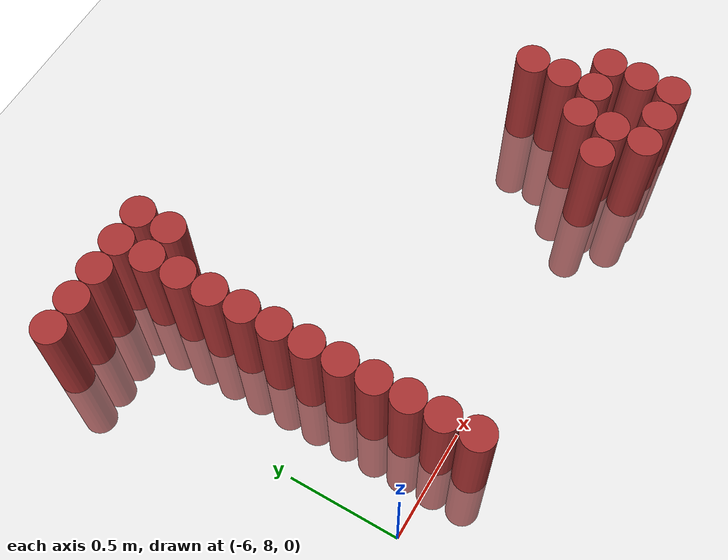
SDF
<sdf version="1.6">
 <world name="default">
  <model name="ground_plane">
   <static>1</static>
   <link name="link">
    <collision name="collision">
     <geometry><plane><normal>0 0 1</normal><size>100 100</size></plane></geometry>
     <surface><friction><ode><mu>100</mu><mu2>50</mu2></ode></friction></surface>
    </collision>
    <visual name="visual">
     <cast_shadows>0</cast_shadows>
     <geometry><plane><normal>0 0 1</normal><size>100 100</size></plane></geometry>
     <material>
      <script><uri>file://media/materials/scripts/gazebo.material</uri><name>Gazebo/Grey</name></script>
     </material>
    </visual>
   </link>
  </model>
  <model name="unit_cylinder_204">
   <static>1</static>
   <pose>-6.075000 9.525000 0.000000 0.000000 0.000000 0.000000</pose>
   <link name="link">
    <inertial>
     <mass>1</mass>
     <inertia><ixx>0.145833</ixx><ixy>0</ixy><ixz>0</ixz><iyy>0.145833</iyy><iyz>0</iyz><izz>0.125</izz></inertia>
    </inertial>
    <collision name="collision">
     <geometry><cylinder><radius>0.075000</radius><length>1</length></cylinder></geometry>
    </collision>
    <visual name="visual">
     <geometry><cylinder><radius>0.075000</radius><length>1</length></cylinder></geometry>
     <material>
      <ambient>0.648000 0.192000 0.192000 1</ambient>
      <diffuse>0.648000 0.192000 0.192000 1</diffuse>
     </material>
     <material>
      <script><name>Gazebo/Grey</name><uri>file://media/materials/scripts/gazebo.material</uri></script>
     </material>
    </visual>
   </link>
  </model>
  <model name="unit_cylinder_206">
   <static>1</static>
   <pose>-5.925000 9.525000 0.000000 0.000000 0.000000 0.000000</pose>
   <link name="link">
    <inertial>
     <mass>1</mass>
     <inertia><ixx>0.145833</ixx><ixy>0</ixy><ixz>0</ixz><iyy>0.145833</iyy><iyz>0</iyz><izz>0.125</izz></inertia>
    </inertial>
    <collision name="collision">
     <geometry><cylinder><radius>0.075000</radius><length>1</length></cylinder></geometry>
    </collision>
    <visual name="visual">
     <geometry><cylinder><radius>0.075000</radius><length>1</length></cylinder></geometry>
     <material>
      <ambient>0.648000 0.192000 0.192000 1</ambient>
      <diffuse>0.648000 0.192000 0.192000 1</diffuse>
     </material>
     <material>
      <script><name>Gazebo/Grey</name><uri>file://media/materials/scripts/gazebo.material</uri></script>
     </material>
    </visual>
   </link>
  </model>
  <model name="unit_cylinder_208">
   <static>1</static>
   <pose>-5.775000 9.525000 0.000000 0.000000 0.000000 0.000000</pose>
   <link name="link">
    <inertial>
     <mass>1</mass>
     <inertia><ixx>0.145833</ixx><ixy>0</ixy><ixz>0</ixz><iyy>0.145833</iyy><iyz>0</iyz><izz>0.125</izz></inertia>
    </inertial>
    <collision name="collision">
     <geometry><cylinder><radius>0.075000</radius><length>1</length></cylinder></geometry>
    </collision>
    <visual name="visual">
     <geometry><cylinder><radius>0.075000</radius><length>1</length></cylinder></geometry>
     <material>
      <ambient>0.648000 0.192000 0.192000 1</ambient>
      <diffuse>0.648000 0.192000 0.192000 1</diffuse>
     </material>
     <material>
      <script><name>Gazebo/Grey</name><uri>file://media/materials/scripts/gazebo.material</uri></script>
     </material>
    </visual>
   </link>
  </model>
  <model name="unit_cylinder_215">
   <static>1</static>
   <pose>-5.625000 7.875000 0.000000 0.000000 0.000000 0.000000</pose>
   <link name="link">
    <inertial>
     <mass>1</mass>
     <inertia><ixx>0.145833</ixx><ixy>0</ixy><ixz>0</ixz><iyy>0.145833</iyy><iyz>0</iyz><izz>0.125</izz></inertia>
    </inertial>
    <collision name="collision">
     <geometry><cylinder><radius>0.075000</radius><length>1</length></cylinder></geometry>
    </collision>
    <visual name="visual">
     <geometry><cylinder><radius>0.075000</radius><length>1</length></cylinder></geometry>
     <material>
      <ambient>0.648000 0.192000 0.192000 1</ambient>
      <diffuse>0.648000 0.192000 0.192000 1</diffuse>
     </material>
     <material>
      <script><name>Gazebo/Grey</name><uri>file://media/materials/scripts/gazebo.material</uri></script>
     </material>
    </visual>
   </link>
  </model>
  <model name="unit_cylinder_216">
   <static>1</static>
   <pose>-5.625000 8.025000 0.000000 0.000000 0.000000 0.000000</pose>
   <link name="link">
    <inertial>
     <mass>1</mass>
     <inertia><ixx>0.145833</ixx><ixy>0</ixy><ixz>0</ixz><iyy>0.145833</iyy><iyz>0</iyz><izz>0.125</izz></inertia>
    </inertial>
    <collision name="collision">
     <geometry><cylinder><radius>0.075000</radius><length>1</length></cylinder></geometry>
    </collision>
    <visual name="visual">
     <geometry><cylinder><radius>0.075000</radius><length>1</length></cylinder></geometry>
     <material>
      <ambient>0.648000 0.192000 0.192000 1</ambient>
      <diffuse>0.648000 0.192000 0.192000 1</diffuse>
     </material>
     <material>
      <script><name>Gazebo/Grey</name><uri>file://media/materials/scripts/gazebo.material</uri></script>
     </material>
    </visual>
   </link>
  </model>
  <model name="unit_cylinder_217">
   <static>1</static>
   <pose>-5.625000 8.175000 0.000000 0.000000 0.000000 0.000000</pose>
   <link name="link">
    <inertial>
     <mass>1</mass>
     <inertia><ixx>0.145833</ixx><ixy>0</ixy><ixz>0</ixz><iyy>0.145833</iyy><iyz>0</iyz><izz>0.125</izz></inertia>
    </inertial>
    <collision name="collision">
     <geometry><cylinder><radius>0.075000</radius><length>1</length></cylinder></geometry>
    </collision>
    <visual name="visual">
     <geometry><cylinder><radius>0.075000</radius><length>1</length></cylinder></geometry>
     <material>
      <ambient>0.648000 0.192000 0.192000 1</ambient>
      <diffuse>0.648000 0.192000 0.192000 1</diffuse>
     </material>
     <material>
      <script><name>Gazebo/Grey</name><uri>file://media/materials/scripts/gazebo.material</uri></script>
     </material>
    </visual>
   </link>
  </model>
  <model name="unit_cylinder_218">
   <static>1</static>
   <pose>-5.625000 8.325000 0.000000 0.000000 0.000000 0.000000</pose>
   <link name="link">
    <inertial>
     <mass>1</mass>
     <inertia><ixx>0.145833</ixx><ixy>0</ixy><ixz>0</ixz><iyy>0.145833</iyy><iyz>0</iyz><izz>0.125</izz></inertia>
    </inertial>
    <collision name="collision">
     <geometry><cylinder><radius>0.075000</radius><length>1</length></cylinder></geometry>
    </collision>
    <visual name="visual">
     <geometry><cylinder><radius>0.075000</radius><length>1</length></cylinder></geometry>
     <material>
      <ambient>0.648000 0.192000 0.192000 1</ambient>
      <diffuse>0.648000 0.192000 0.192000 1</diffuse>
     </material>
     <material>
      <script><name>Gazebo/Grey</name><uri>file://media/materials/scripts/gazebo.material</uri></script>
     </material>
    </visual>
   </link>
  </model>
  <model name="unit_cylinder_219">
   <static>1</static>
   <pose>-5.625000 8.475000 0.000000 0.000000 0.000000 0.000000</pose>
   <link name="link">
    <inertial>
     <mass>1</mass>
     <inertia><ixx>0.145833</ixx><ixy>0</ixy><ixz>0</ixz><iyy>0.145833</iyy><iyz>0</iyz><izz>0.125</izz></inertia>
    </inertial>
    <collision name="collision">
     <geometry><cylinder><radius>0.075000</radius><length>1</length></cylinder></geometry>
    </collision>
    <visual name="visual">
     <geometry><cylinder><radius>0.075000</radius><length>1</length></cylinder></geometry>
     <material>
      <ambient>0.648000 0.192000 0.192000 1</ambient>
      <diffuse>0.648000 0.192000 0.192000 1</diffuse>
     </material>
     <material>
      <script><name>Gazebo/Grey</name><uri>file://media/materials/scripts/gazebo.material</uri></script>
     </material>
    </visual>
   </link>
  </model>
  <model name="unit_cylinder_220">
   <static>1</static>
   <pose>-5.625000 8.625000 0.000000 0.000000 0.000000 0.000000</pose>
   <link name="link">
    <inertial>
     <mass>1</mass>
     <inertia><ixx>0.145833</ixx><ixy>0</ixy><ixz>0</ixz><iyy>0.145833</iyy><iyz>0</iyz><izz>0.125</izz></inertia>
    </inertial>
    <collision name="collision">
     <geometry><cylinder><radius>0.075000</radius><length>1</length></cylinder></geometry>
    </collision>
    <visual name="visual">
     <geometry><cylinder><radius>0.075000</radius><length>1</length></cylinder></geometry>
     <material>
      <ambient>0.648000 0.192000 0.192000 1</ambient>
      <diffuse>0.648000 0.192000 0.192000 1</diffuse>
     </material>
     <material>
      <script><name>Gazebo/Grey</name><uri>file://media/materials/scripts/gazebo.material</uri></script>
     </material>
    </visual>
   </link>
  </model>
  <model name="unit_cylinder_221">
   <static>1</static>
   <pose>-5.625000 8.775000 0.000000 0.000000 0.000000 0.000000</pose>
   <link name="link">
    <inertial>
     <mass>1</mass>
     <inertia><ixx>0.145833</ixx><ixy>0</ixy><ixz>0</ixz><iyy>0.145833</iyy><iyz>0</iyz><izz>0.125</izz></inertia>
    </inertial>
    <collision name="collision">
     <geometry><cylinder><radius>0.075000</radius><length>1</length></cylinder></geometry>
    </collision>
    <visual name="visual">
     <geometry><cylinder><radius>0.075000</radius><length>1</length></cylinder></geometry>
     <material>
      <ambient>0.648000 0.192000 0.192000 1</ambient>
      <diffuse>0.648000 0.192000 0.192000 1</diffuse>
     </material>
     <material>
      <script><name>Gazebo/Grey</name><uri>file://media/materials/scripts/gazebo.material</uri></script>
     </material>
    </visual>
   </link>
  </model>
  <model name="unit_cylinder_222">
   <static>1</static>
   <pose>-5.625000 8.925000 0.000000 0.000000 0.000000 0.000000</pose>
   <link name="link">
    <inertial>
     <mass>1</mass>
     <inertia><ixx>0.145833</ixx><ixy>0</ixy><ixz>0</ixz><iyy>0.145833</iyy><iyz>0</iyz><izz>0.125</izz></inertia>
    </inertial>
    <collision name="collision">
     <geometry><cylinder><radius>0.075000</radius><length>1</length></cylinder></geometry>
    </collision>
    <visual name="visual">
     <geometry><cylinder><radius>0.075000</radius><length>1</length></cylinder></geometry>
     <material>
      <ambient>0.648000 0.192000 0.192000 1</ambient>
      <diffuse>0.648000 0.192000 0.192000 1</diffuse>
     </material>
     <material>
      <script><name>Gazebo/Grey</name><uri>file://media/materials/scripts/gazebo.material</uri></script>
     </material>
    </visual>
   </link>
  </model>
  <model name="unit_cylinder_223">
   <static>1</static>
   <pose>-5.625000 9.075000 0.000000 0.000000 0.000000 0.000000</pose>
   <link name="link">
    <inertial>
     <mass>1</mass>
     <inertia><ixx>0.145833</ixx><ixy>0</ixy><ixz>0</ixz><iyy>0.145833</iyy><iyz>0</iyz><izz>0.125</izz></inertia>
    </inertial>
    <collision name="collision">
     <geometry><cylinder><radius>0.075000</radius><length>1</length></cylinder></geometry>
    </collision>
    <visual name="visual">
     <geometry><cylinder><radius>0.075000</radius><length>1</length></cylinder></geometry>
     <material>
      <ambient>0.648000 0.192000 0.192000 1</ambient>
      <diffuse>0.648000 0.192000 0.192000 1</diffuse>
     </material>
     <material>
      <script><name>Gazebo/Grey</name><uri>file://media/materials/scripts/gazebo.material</uri></script>
     </material>
    </visual>
   </link>
  </model>
  <model name="unit_cylinder_224">
   <static>1</static>
   <pose>-5.625000 9.225000 0.000000 0.000000 0.000000 0.000000</pose>
   <link name="link">
    <inertial>
     <mass>1</mass>
     <inertia><ixx>0.145833</ixx><ixy>0</ixy><ixz>0</ixz><iyy>0.145833</iyy><iyz>0</iyz><izz>0.125</izz></inertia>
    </inertial>
    <collision name="collision">
     <geometry><cylinder><radius>0.075000</radius><length>1</length></cylinder></geometry>
    </collision>
    <visual name="visual">
     <geometry><cylinder><radius>0.075000</radius><length>1</length></cylinder></geometry>
     <material>
      <ambient>0.648000 0.192000 0.192000 1</ambient>
      <diffuse>0.648000 0.192000 0.192000 1</diffuse>
     </material>
     <material>
      <script><name>Gazebo/Grey</name><uri>file://media/materials/scripts/gazebo.material</uri></script>
     </material>
    </visual>
   </link>
  </model>
  <model name="unit_cylinder_225">
   <static>1</static>
   <pose>-5.625000 9.375000 0.000000 0.000000 0.000000 0.000000</pose>
   <link name="link">
    <inertial>
     <mass>1</mass>
     <inertia><ixx>0.145833</ixx><ixy>0</ixy><ixz>0</ixz><iyy>0.145833</iyy><iyz>0</iyz><izz>0.125</izz></inertia>
    </inertial>
    <collision name="collision">
     <geometry><cylinder><radius>0.075000</radius><length>1</length></cylinder></geometry>
    </collision>
    <visual name="visual">
     <geometry><cylinder><radius>0.075000</radius><length>1</length></cylinder></geometry>
     <material>
      <ambient>0.648000 0.192000 0.192000 1</ambient>
      <diffuse>0.648000 0.192000 0.192000 1</diffuse>
     </material>
     <material>
      <script><name>Gazebo/Grey</name><uri>file://media/materials/scripts/gazebo.material</uri></script>
     </material>
    </visual>
   </link>
  </model>
  <model name="unit_cylinder_226">
   <static>1</static>
   <pose>-5.625000 9.525000 0.000000 0.000000 0.000000 0.000000</pose>
   <link name="link">
    <inertial>
     <mass>1</mass>
     <inertia><ixx>0.145833</ixx><ixy>0</ixy><ixz>0</ixz><iyy>0.145833</iyy><iyz>0</iyz><izz>0.125</izz></inertia>
    </inertial>
    <collision name="collision">
     <geometry><cylinder><radius>0.075000</radius><length>1</length></cylinder></geometry>
    </collision>
    <visual name="visual">
     <geometry><cylinder><radius>0.075000</radius><length>1</length></cylinder></geometry>
     <material>
      <ambient>0.648000 0.192000 0.192000 1</ambient>
      <diffuse>0.648000 0.192000 0.192000 1</diffuse>
     </material>
     <material>
      <script><name>Gazebo/Grey</name><uri>file://media/materials/scripts/gazebo.material</uri></script>
     </material>
    </visual>
   </link>
  </model>
  <model name="unit_cylinder_227">
   <static>1</static>
   <pose>-5.475000 9.375000 0.000000 0.000000 0.000000 0.000000</pose>
   <link name="link">
    <inertial>
     <mass>1</mass>
     <inertia><ixx>0.145833</ixx><ixy>0</ixy><ixz>0</ixz><iyy>0.145833</iyy><iyz>0</iyz><izz>0.125</izz></inertia>
    </inertial>
    <collision name="collision">
     <geometry><cylinder><radius>0.075000</radius><length>1</length></cylinder></geometry>
    </collision>
    <visual name="visual">
     <geometry><cylinder><radius>0.075000</radius><length>1</length></cylinder></geometry>
     <material>
      <ambient>0.648000 0.192000 0.192000 1</ambient>
      <diffuse>0.648000 0.192000 0.192000 1</diffuse>
     </material>
     <material>
      <script><name>Gazebo/Grey</name><uri>file://media/materials/scripts/gazebo.material</uri></script>
     </material>
    </visual>
   </link>
  </model>
  <model name="unit_cylinder_228">
   <static>1</static>
   <pose>-5.475000 9.525000 0.000000 0.000000 0.000000 0.000000</pose>
   <link name="link">
    <inertial>
     <mass>1</mass>
     <inertia><ixx>0.145833</ixx><ixy>0</ixy><ixz>0</ixz><iyy>0.145833</iyy><iyz>0</iyz><izz>0.125</izz></inertia>
    </inertial>
    <collision name="collision">
     <geometry><cylinder><radius>0.075000</radius><length>1</length></cylinder></geometry>
    </collision>
    <visual name="visual">
     <geometry><cylinder><radius>0.075000</radius><length>1</length></cylinder></geometry>
     <material>
      <ambient>0.648000 0.192000 0.192000 1</ambient>
      <diffuse>0.648000 0.192000 0.192000 1</diffuse>
     </material>
     <material>
      <script><name>Gazebo/Grey</name><uri>file://media/materials/scripts/gazebo.material</uri></script>
     </material>
    </visual>
   </link>
  </model>
  <model name="unit_cylinder_233">
   <static>1</static>
   <pose>-4.275000 8.025000 0.000000 0.000000 0.000000 0.000000</pose>
   <link name="link">
    <inertial>
     <mass>1</mass>
     <inertia><ixx>0.145833</ixx><ixy>0</ixy><ixz>0</ixz><iyy>0.145833</iyy><iyz>0</iyz><izz>0.125</izz></inertia>
    </inertial>
    <collision name="collision">
     <geometry><cylinder><radius>0.075000</radius><length>1</length></cylinder></geometry>
    </collision>
    <visual name="visual">
     <geometry><cylinder><radius>0.075000</radius><length>1</length></cylinder></geometry>
     <material>
      <ambient>0.648000 0.192000 0.192000 1</ambient>
      <diffuse>0.648000 0.192000 0.192000 1</diffuse>
     </material>
     <material>
      <script><name>Gazebo/Grey</name><uri>file://media/materials/scripts/gazebo.material</uri></script>
     </material>
    </visual>
   </link>
  </model>
  <model name="unit_cylinder_235">
   <static>1</static>
   <pose>-4.125000 7.875000 0.000000 0.000000 0.000000 0.000000</pose>
   <link name="link">
    <inertial>
     <mass>1</mass>
     <inertia><ixx>0.145833</ixx><ixy>0</ixy><ixz>0</ixz><iyy>0.145833</iyy><iyz>0</iyz><izz>0.125</izz></inertia>
    </inertial>
    <collision name="collision">
     <geometry><cylinder><radius>0.075000</radius><length>1</length></cylinder></geometry>
    </collision>
    <visual name="visual">
     <geometry><cylinder><radius>0.075000</radius><length>1</length></cylinder></geometry>
     <material>
      <ambient>0.648000 0.192000 0.192000 1</ambient>
      <diffuse>0.648000 0.192000 0.192000 1</diffuse>
     </material>
     <material>
      <script><name>Gazebo/Grey</name><uri>file://media/materials/scripts/gazebo.material</uri></script>
     </material>
    </visual>
   </link>
  </model>
  <model name="unit_cylinder_236">
   <static>1</static>
   <pose>-4.125000 8.025000 0.000000 0.000000 0.000000 0.000000</pose>
   <link name="link">
    <inertial>
     <mass>1</mass>
     <inertia><ixx>0.145833</ixx><ixy>0</ixy><ixz>0</ixz><iyy>0.145833</iyy><iyz>0</iyz><izz>0.125</izz></inertia>
    </inertial>
    <collision name="collision">
     <geometry><cylinder><radius>0.075000</radius><length>1</length></cylinder></geometry>
    </collision>
    <visual name="visual">
     <geometry><cylinder><radius>0.075000</radius><length>1</length></cylinder></geometry>
     <material>
      <ambient>0.648000 0.192000 0.192000 1</ambient>
      <diffuse>0.648000 0.192000 0.192000 1</diffuse>
     </material>
     <material>
      <script><name>Gazebo/Grey</name><uri>file://media/materials/scripts/gazebo.material</uri></script>
     </material>
    </visual>
   </link>
  </model>
  <model name="unit_cylinder_237">
   <static>1</static>
   <pose>-4.125000 8.175000 0.000000 0.000000 0.000000 0.000000</pose>
   <link name="link">
    <inertial>
     <mass>1</mass>
     <inertia><ixx>0.145833</ixx><ixy>0</ixy><ixz>0</ixz><iyy>0.145833</iyy><iyz>0</iyz><izz>0.125</izz></inertia>
    </inertial>
    <collision name="collision">
     <geometry><cylinder><radius>0.075000</radius><length>1</length></cylinder></geometry>
    </collision>
    <visual name="visual">
     <geometry><cylinder><radius>0.075000</radius><length>1</length></cylinder></geometry>
     <material>
      <ambient>0.648000 0.192000 0.192000 1</ambient>
      <diffuse>0.648000 0.192000 0.192000 1</diffuse>
     </material>
     <material>
      <script><name>Gazebo/Grey</name><uri>file://media/materials/scripts/gazebo.material</uri></script>
     </material>
    </visual>
   </link>
  </model>
  <model name="unit_cylinder_243">
   <static>1</static>
   <pose>-3.975000 7.875000 0.000000 0.000000 0.000000 0.000000</pose>
   <link name="link">
    <inertial>
     <mass>1</mass>
     <inertia><ixx>0.145833</ixx><ixy>0</ixy><ixz>0</ixz><iyy>0.145833</iyy><iyz>0</iyz><izz>0.125</izz></inertia>
    </inertial>
    <collision name="collision">
     <geometry><cylinder><radius>0.075000</radius><length>1</length></cylinder></geometry>
    </collision>
    <visual name="visual">
     <geometry><cylinder><radius>0.075000</radius><length>1</length></cylinder></geometry>
     <material>
      <ambient>0.648000 0.192000 0.192000 1</ambient>
      <diffuse>0.648000 0.192000 0.192000 1</diffuse>
     </material>
     <material>
      <script><name>Gazebo/Grey</name><uri>file://media/materials/scripts/gazebo.material</uri></script>
     </material>
    </visual>
   </link>
  </model>
  <model name="unit_cylinder_244">
   <static>1</static>
   <pose>-3.975000 8.175000 0.000000 0.000000 0.000000 0.000000</pose>
   <link name="link">
    <inertial>
     <mass>1</mass>
     <inertia><ixx>0.145833</ixx><ixy>0</ixy><ixz>0</ixz><iyy>0.145833</iyy><iyz>0</iyz><izz>0.125</izz></inertia>
    </inertial>
    <collision name="collision">
     <geometry><cylinder><radius>0.075000</radius><length>1</length></cylinder></geometry>
    </collision>
    <visual name="visual">
     <geometry><cylinder><radius>0.075000</radius><length>1</length></cylinder></geometry>
     <material>
      <ambient>0.648000 0.192000 0.192000 1</ambient>
      <diffuse>0.648000 0.192000 0.192000 1</diffuse>
     </material>
     <material>
      <script><name>Gazebo/Grey</name><uri>file://media/materials/scripts/gazebo.material</uri></script>
     </material>
    </visual>
   </link>
  </model>
  <model name="unit_cylinder_245">
   <static>1</static>
   <pose>-3.975000 8.325000 0.000000 0.000000 0.000000 0.000000</pose>
   <link name="link">
    <inertial>
     <mass>1</mass>
     <inertia><ixx>0.145833</ixx><ixy>0</ixy><ixz>0</ixz><iyy>0.145833</iyy><iyz>0</iyz><izz>0.125</izz></inertia>
    </inertial>
    <collision name="collision">
     <geometry><cylinder><radius>0.075000</radius><length>1</length></cylinder></geometry>
    </collision>
    <visual name="visual">
     <geometry><cylinder><radius>0.075000</radius><length>1</length></cylinder></geometry>
     <material>
      <ambient>0.648000 0.192000 0.192000 1</ambient>
      <diffuse>0.648000 0.192000 0.192000 1</diffuse>
     </material>
     <material>
      <script><name>Gazebo/Grey</name><uri>file://media/materials/scripts/gazebo.material</uri></script>
     </material>
    </visual>
   </link>
  </model>
  <model name="unit_cylinder_246">
   <static>1</static>
   <pose>-3.975000 8.475000 0.000000 0.000000 0.000000 0.000000</pose>
   <link name="link">
    <inertial>
     <mass>1</mass>
     <inertia><ixx>0.145833</ixx><ixy>0</ixy><ixz>0</ixz><iyy>0.145833</iyy><iyz>0</iyz><izz>0.125</izz></inertia>
    </inertial>
    <collision name="collision">
     <geometry><cylinder><radius>0.075000</radius><length>1</length></cylinder></geometry>
    </collision>
    <visual name="visual">
     <geometry><cylinder><radius>0.075000</radius><length>1</length></cylinder></geometry>
     <material>
      <ambient>0.648000 0.192000 0.192000 1</ambient>
      <diffuse>0.648000 0.192000 0.192000 1</diffuse>
     </material>
     <material>
      <script><name>Gazebo/Grey</name><uri>file://media/materials/scripts/gazebo.material</uri></script>
     </material>
    </visual>
   </link>
  </model>
  <model name="unit_cylinder_255">
   <static>1</static>
   <pose>-3.825000 7.875000 0.000000 0.000000 0.000000 0.000000</pose>
   <link name="link">
    <inertial>
     <mass>1</mass>
     <inertia><ixx>0.145833</ixx><ixy>0</ixy><ixz>0</ixz><iyy>0.145833</iyy><iyz>0</iyz><izz>0.125</izz></inertia>
    </inertial>
    <collision name="collision">
     <geometry><cylinder><radius>0.075000</radius><length>1</length></cylinder></geometry>
    </collision>
    <visual name="visual">
     <geometry><cylinder><radius>0.075000</radius><length>1</length></cylinder></geometry>
     <material>
      <ambient>0.648000 0.192000 0.192000 1</ambient>
      <diffuse>0.648000 0.192000 0.192000 1</diffuse>
     </material>
     <material>
      <script><name>Gazebo/Grey</name><uri>file://media/materials/scripts/gazebo.material</uri></script>
     </material>
    </visual>
   </link>
  </model>
  <model name="unit_cylinder_256">
   <static>1</static>
   <pose>-3.825000 8.025000 0.000000 0.000000 0.000000 0.000000</pose>
   <link name="link">
    <inertial>
     <mass>1</mass>
     <inertia><ixx>0.145833</ixx><ixy>0</ixy><ixz>0</ixz><iyy>0.145833</iyy><iyz>0</iyz><izz>0.125</izz></inertia>
    </inertial>
    <collision name="collision">
     <geometry><cylinder><radius>0.075000</radius><length>1</length></cylinder></geometry>
    </collision>
    <visual name="visual">
     <geometry><cylinder><radius>0.075000</radius><length>1</length></cylinder></geometry>
     <material>
      <ambient>0.648000 0.192000 0.192000 1</ambient>
      <diffuse>0.648000 0.192000 0.192000 1</diffuse>
     </material>
     <material>
      <script><name>Gazebo/Grey</name><uri>file://media/materials/scripts/gazebo.material</uri></script>
     </material>
    </visual>
   </link>
  </model>
  <model name="unit_cylinder_257">
   <static>1</static>
   <pose>-3.825000 8.175000 0.000000 0.000000 0.000000 0.000000</pose>
   <link name="link">
    <inertial>
     <mass>1</mass>
     <inertia><ixx>0.145833</ixx><ixy>0</ixy><ixz>0</ixz><iyy>0.145833</iyy><iyz>0</iyz><izz>0.125</izz></inertia>
    </inertial>
    <collision name="collision">
     <geometry><cylinder><radius>0.075000</radius><length>1</length></cylinder></geometry>
    </collision>
    <visual name="visual">
     <geometry><cylinder><radius>0.075000</radius><length>1</length></cylinder></geometry>
     <material>
      <ambient>0.648000 0.192000 0.192000 1</ambient>
      <diffuse>0.648000 0.192000 0.192000 1</diffuse>
     </material>
     <material>
      <script><name>Gazebo/Grey</name><uri>file://media/materials/scripts/gazebo.material</uri></script>
     </material>
    </visual>
   </link>
  </model>
 </world>
</sdf>
